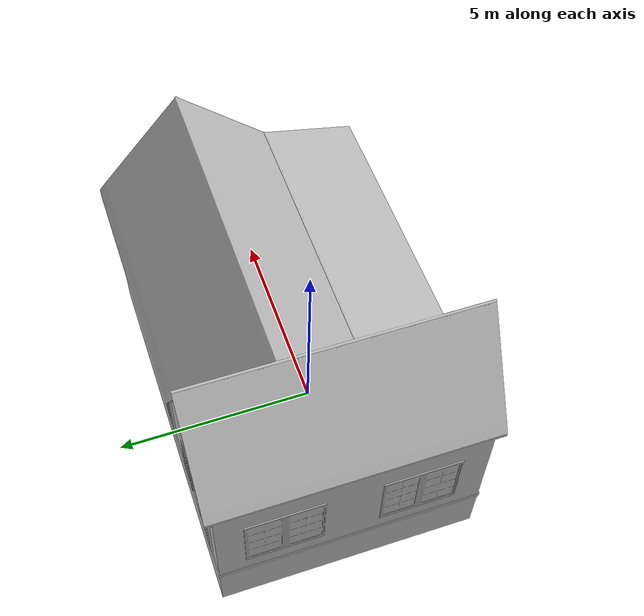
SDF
<?xml version="1.0" ?>
<sdf version="1.5">
  <model name="House 4">
    <static>true</static>
    <link name="link">
      <collision name="collision">
        <geometry>
          <mesh>
            <uri>model://house_4/meshes/house_4.dae</uri>
            <scale>0.4 0.4 0.4</scale>
          </mesh>
        </geometry>
      </collision>
      <visual name="visual">
        <geometry>
          <mesh>
            <uri>model://house_4/meshes/house_4.dae</uri>
            <scale>0.4 0.4 0.4</scale>
          </mesh>
        </geometry>
      </visual>
    </link>
  </model>
</sdf>
